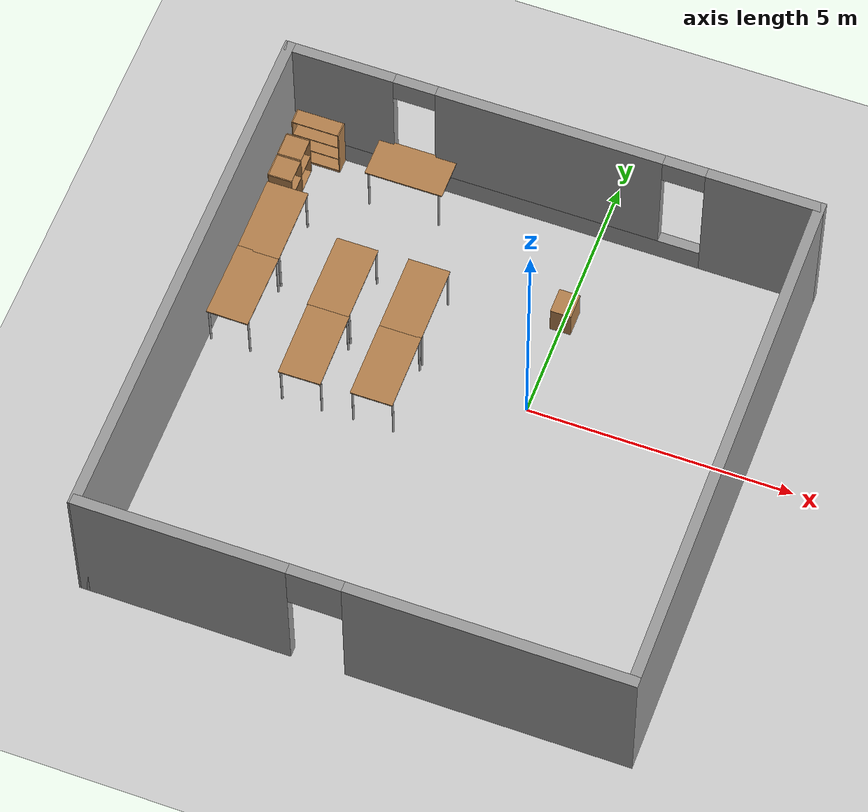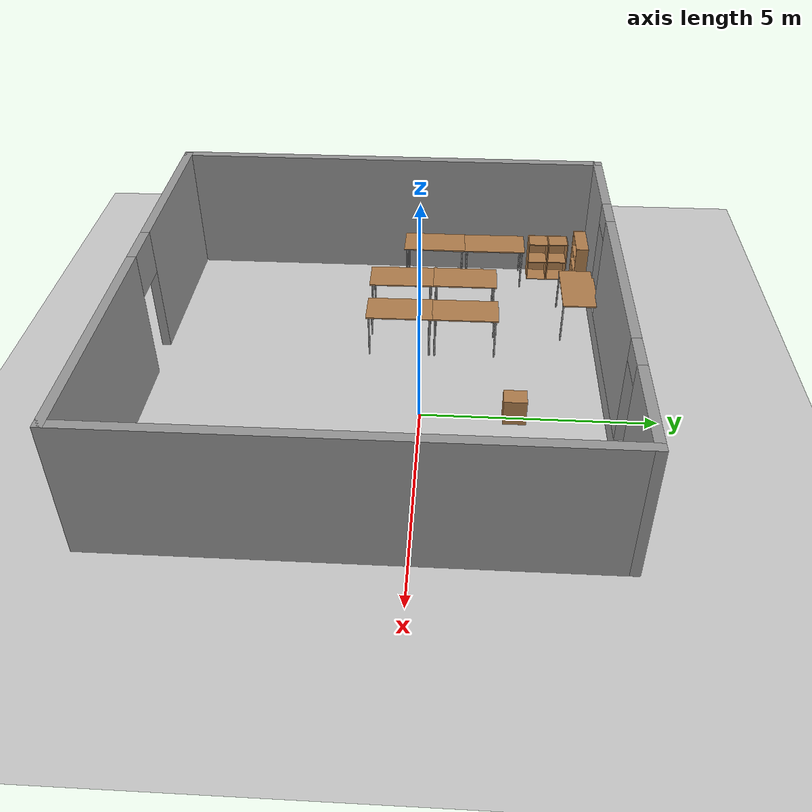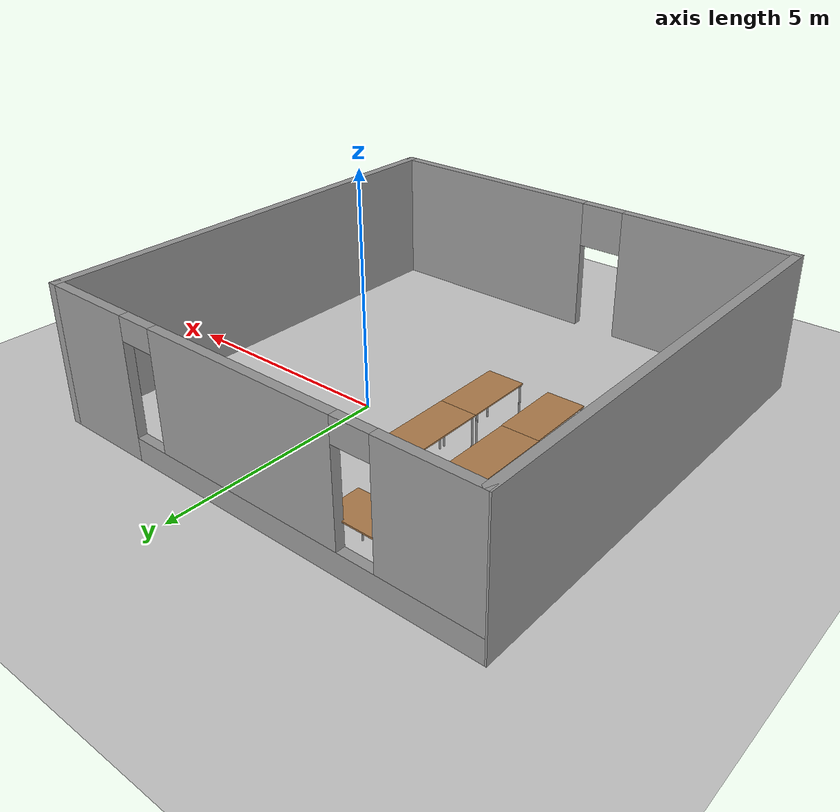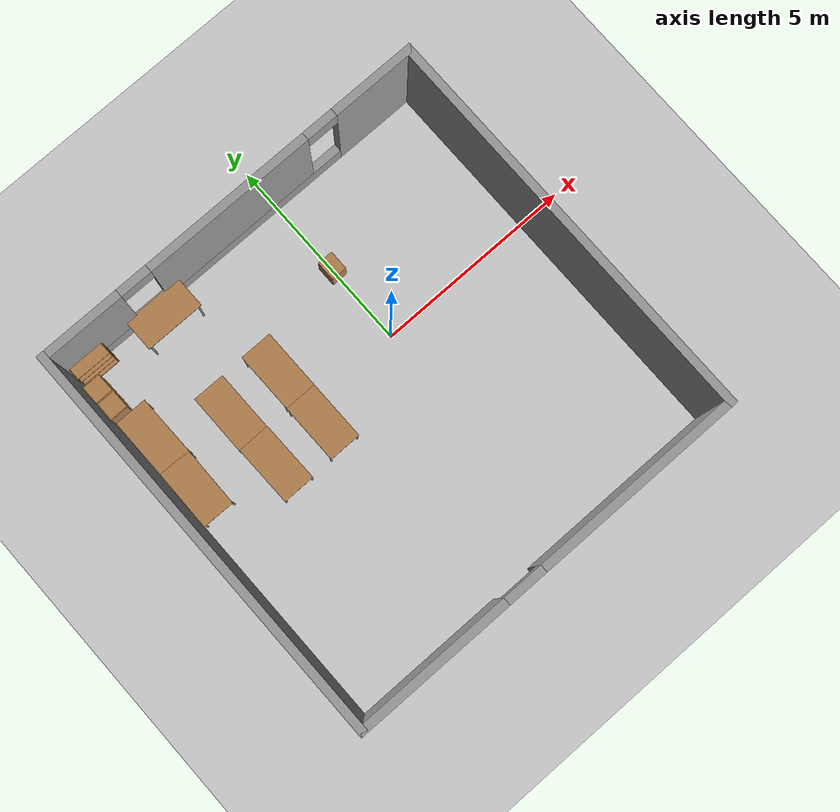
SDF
<sdf version="1.4">
 <world name="default">
  <model name="ground_plane">
   <static>1</static>
   <link name="link">
    <collision name="collision">
     <geometry><plane><normal>0 0 1</normal><size>100 100</size></plane></geometry>
     <surface><friction><ode><mu>100</mu><mu2>50</mu2></ode></friction></surface>
    </collision>
    <visual name="visual">
     <cast_shadows>0</cast_shadows>
     <geometry><plane><normal>0 0 1</normal><size>100 100</size></plane></geometry>
     <material>
      <script><uri>file://media/materials/scripts/gazebo.material</uri><name>Gazebo/Grey</name></script>
     </material>
    </visual>
    <velocity_decay><linear>0</linear><angular>0</angular></velocity_decay>
   </link>
  </model>
  <model name="cabinet">
   <static>1</static>
   <link name="cabinet_bottom_plate">
    <inertial>
     <pose>0 0 -1 0 -0 0</pose>
     <inertia><ixx>2.05</ixx><ixy>0</ixy><ixz>0</ixz><iyy>2.05</iyy><iyz>0</iyz><izz>2.05</izz></inertia>
     <mass>25</mass>
    </inertial>
    <collision name="cabinet_bottom_plate_geom">
     <pose>0 0 0.01 0 -0 0</pose>
     <geometry><box><size>0.45 0.45 0.02</size></box></geometry>
    </collision>
    <visual name="cabinet_bottom_plate_geom_visual">
     <pose>0 0 0.01 0 -0 0</pose>
     <geometry><box><size>0.45 0.45 0.02</size></box></geometry>
     <material>
      <script><uri>file://media/materials/scripts/gazebo.material</uri><name>Gazebo/Wood</name></script>
     </material>
    </visual>
    <collision name="cabinet_bottom_plate_geom_cabinet_back_plate">
     <pose>0.235 0 0.51 0 -0 0</pose>
     <geometry><box><size>0.02 0.45 1.02</size></box></geometry>
    </collision>
    <visual name="cabinet_bottom_plate_geom_cabinet_back_plate_visual">
     <pose>0.235 0 0.51 0 -0 0</pose>
     <geometry><box><size>0.02 0.45 1.02</size></box></geometry>
     <material>
      <script><uri>file://media/materials/scripts/gazebo.material</uri><name>Gazebo/Wood</name></script>
     </material>
    </visual>
    <collision name="cabinet_bottom_plate_geom_cabinet_left_plate">
     <pose>0 0.235 0.51 0 -0 0</pose>
     <geometry><box><size>0.45 0.02 1.02</size></box></geometry>
    </collision>
    <visual name="cabinet_bottom_plate_geom_cabinet_left_plate_visual">
     <pose>0 0.235 0.51 0 -0 0</pose>
     <geometry><box><size>0.45 0.02 1.02</size></box></geometry>
     <material>
      <script><uri>file://media/materials/scripts/gazebo.material</uri><name>Gazebo/Wood</name></script>
     </material>
    </visual>
    <collision name="cabinet_bottom_plate_geom_cabinet_middle_plate">
     <pose>0 0 0.51 0 -0 0</pose>
     <geometry><box><size>0.45 0.45 0.02</size></box></geometry>
    </collision>
    <visual name="cabinet_bottom_plate_geom_cabinet_middle_plate_visual">
     <pose>0 0 0.51 0 -0 0</pose>
     <geometry><box><size>0.45 0.45 0.02</size></box></geometry>
     <material>
      <script><uri>file://media/materials/scripts/gazebo.material</uri><name>Gazebo/Wood</name></script>
     </material>
    </visual>
    <collision name="cabinet_bottom_plate_geom_cabinet_right_plate">
     <pose>0 -0.235 0.51 0 -0 0</pose>
     <geometry><box><size>0.45 0.02 1.02</size></box></geometry>
    </collision>
    <visual name="cabinet_bottom_plate_geom_cabinet_right_plate_visual">
     <pose>0 -0.235 0.51 0 -0 0</pose>
     <geometry><box><size>0.45 0.02 1.02</size></box></geometry>
     <material>
      <script><uri>file://media/materials/scripts/gazebo.material</uri><name>Gazebo/Wood</name></script>
     </material>
    </visual>
    <collision name="cabinet_bottom_plate_geom_cabinet_top_plate">
     <pose>0 0 1.01 0 -0 0</pose>
     <geometry><box><size>0.45 0.45 0.02</size></box></geometry>
    </collision>
    <visual name="cabinet_bottom_plate_geom_cabinet_top_plate_visual">
     <pose>0 0 1.01 0 -0 0</pose>
     <geometry><box><size>0.45 0.45 0.02</size></box></geometry>
     <material>
      <script><uri>file://media/materials/scripts/gazebo.material</uri><name>Gazebo/Wood</name></script>
     </material>
    </visual>
    <velocity_decay><linear>0</linear><angular>0</angular></velocity_decay>
   </link>
   <pose>-5.69724 3.21191 0 0 0 -3.12456</pose>
  </model>
  <model name="cabinet_0">
   <static>1</static>
   <link name="cabinet_bottom_plate">
    <inertial>
     <pose>0 0 -1 0 -0 0</pose>
     <inertia><ixx>2.05</ixx><ixy>0</ixy><ixz>0</ixz><iyy>2.05</iyy><iyz>0</iyz><izz>2.05</izz></inertia>
     <mass>25</mass>
    </inertial>
    <collision name="cabinet_bottom_plate_geom">
     <pose>0 0 0.01 0 -0 0</pose>
     <geometry><box><size>0.45 0.45 0.02</size></box></geometry>
    </collision>
    <visual name="cabinet_bottom_plate_geom_visual">
     <pose>0 0 0.01 0 -0 0</pose>
     <geometry><box><size>0.45 0.45 0.02</size></box></geometry>
     <material>
      <script><uri>file://media/materials/scripts/gazebo.material</uri><name>Gazebo/Wood</name></script>
     </material>
    </visual>
    <collision name="cabinet_bottom_plate_geom_cabinet_back_plate">
     <pose>0.235 0 0.51 0 -0 0</pose>
     <geometry><box><size>0.02 0.45 1.02</size></box></geometry>
    </collision>
    <visual name="cabinet_bottom_plate_geom_cabinet_back_plate_visual">
     <pose>0.235 0 0.51 0 -0 0</pose>
     <geometry><box><size>0.02 0.45 1.02</size></box></geometry>
     <material>
      <script><uri>file://media/materials/scripts/gazebo.material</uri><name>Gazebo/Wood</name></script>
     </material>
    </visual>
    <collision name="cabinet_bottom_plate_geom_cabinet_left_plate">
     <pose>0 0.235 0.51 0 -0 0</pose>
     <geometry><box><size>0.45 0.02 1.02</size></box></geometry>
    </collision>
    <visual name="cabinet_bottom_plate_geom_cabinet_left_plate_visual">
     <pose>0 0.235 0.51 0 -0 0</pose>
     <geometry><box><size>0.45 0.02 1.02</size></box></geometry>
     <material>
      <script><uri>file://media/materials/scripts/gazebo.material</uri><name>Gazebo/Wood</name></script>
     </material>
    </visual>
    <collision name="cabinet_bottom_plate_geom_cabinet_middle_plate">
     <pose>0 0 0.51 0 -0 0</pose>
     <geometry><box><size>0.45 0.45 0.02</size></box></geometry>
    </collision>
    <visual name="cabinet_bottom_plate_geom_cabinet_middle_plate_visual">
     <pose>0 0 0.51 0 -0 0</pose>
     <geometry><box><size>0.45 0.45 0.02</size></box></geometry>
     <material>
      <script><uri>file://media/materials/scripts/gazebo.material</uri><name>Gazebo/Wood</name></script>
     </material>
    </visual>
    <collision name="cabinet_bottom_plate_geom_cabinet_right_plate">
     <pose>0 -0.235 0.51 0 -0 0</pose>
     <geometry><box><size>0.45 0.02 1.02</size></box></geometry>
    </collision>
    <visual name="cabinet_bottom_plate_geom_cabinet_right_plate_visual">
     <pose>0 -0.235 0.51 0 -0 0</pose>
     <geometry><box><size>0.45 0.02 1.02</size></box></geometry>
     <material>
      <script><uri>file://media/materials/scripts/gazebo.material</uri><name>Gazebo/Wood</name></script>
     </material>
    </visual>
    <collision name="cabinet_bottom_plate_geom_cabinet_top_plate">
     <pose>0 0 1.01 0 -0 0</pose>
     <geometry><box><size>0.45 0.45 0.02</size></box></geometry>
    </collision>
    <visual name="cabinet_bottom_plate_geom_cabinet_top_plate_visual">
     <pose>0 0 1.01 0 -0 0</pose>
     <geometry><box><size>0.45 0.45 0.02</size></box></geometry>
     <material>
      <script><uri>file://media/materials/scripts/gazebo.material</uri><name>Gazebo/Wood</name></script>
     </material>
    </visual>
    <velocity_decay><linear>0</linear><angular>0</angular></velocity_decay>
   </link>
   <pose>-5.68738 2.72419 0 0 0 -3.13777</pose>
  </model>
  <model name="bookshelf_1">
   <static>1</static>
   <link name="link">
    <inertial><mass>1</mass></inertial>
    <collision name="back">
     <pose>0 0.005 0.6 0 -0 0</pose>
     <geometry><box><size>0.9 0.01 1.2</size></box></geometry>
    </collision>
    <visual name="visual1">
     <pose>0 0.005 0.6 0 -0 0</pose>
     <geometry><box><size>0.9 0.01 1.2</size></box></geometry>
     <material>
      <script><uri>file://media/materials/scripts/gazebo.material</uri><name>Gazebo/Wood</name></script>
     </material>
    </visual>
    <collision name="left_side">
     <pose>0.45 -0.195 0.6 0 -0 0</pose>
     <geometry><box><size>0.02 0.4 1.2</size></box></geometry>
    </collision>
    <visual name="visual2">
     <pose>0.45 -0.195 0.6 0 -0 0</pose>
     <geometry><box><size>0.02 0.4 1.2</size></box></geometry>
     <material>
      <script><uri>file://media/materials/scripts/gazebo.material</uri><name>Gazebo/Wood</name></script>
     </material>
    </visual>
    <collision name="right_side">
     <pose>-0.45 -0.195 0.6 0 -0 0</pose>
     <geometry><box><size>0.02 0.4 1.2</size></box></geometry>
    </collision>
    <visual name="visual3">
     <pose>-0.45 -0.195 0.6 0 -0 0</pose>
     <geometry><box><size>0.02 0.4 1.2</size></box></geometry>
     <material>
      <script><uri>file://media/materials/scripts/gazebo.material</uri><name>Gazebo/Wood</name></script>
     </material>
    </visual>
    <collision name="bottom">
     <pose>0 -0.195 0.03 0 -0 0</pose>
     <geometry><box><size>0.88 0.4 0.06</size></box></geometry>
    </collision>
    <visual name="visual4">
     <pose>0 -0.195 0.03 0 -0 0</pose>
     <geometry><box><size>0.88 0.4 0.06</size></box></geometry>
     <material>
      <script><uri>file://media/materials/scripts/gazebo.material</uri><name>Gazebo/Wood</name></script>
     </material>
    </visual>
    <collision name="top">
     <pose>0 -0.195 1.19 0 -0 0</pose>
     <geometry><box><size>0.88 0.4 0.02</size></box></geometry>
    </collision>
    <visual name="visual5">
     <pose>0 -0.195 1.19 0 -0 0</pose>
     <geometry><box><size>0.88 0.4 0.02</size></box></geometry>
     <material>
      <script><uri>file://media/materials/scripts/gazebo.material</uri><name>Gazebo/Wood</name></script>
     </material>
    </visual>
    <collision name="low_shelf">
     <pose>0 -0.195 0.43 0 -0 0</pose>
     <geometry><box><size>0.88 0.4 0.02</size></box></geometry>
    </collision>
    <visual name="visual6">
     <pose>0 -0.195 0.43 0 -0 0</pose>
     <geometry><box><size>0.88 0.4 0.02</size></box></geometry>
     <material>
      <script><uri>file://media/materials/scripts/gazebo.material</uri><name>Gazebo/Wood</name></script>
     </material>
    </visual>
    <collision name="high_shelf">
     <pose>0 -0.195 0.8 0 -0 0</pose>
     <geometry><box><size>0.88 0.4 0.02</size></box></geometry>
    </collision>
    <visual name="visual7">
     <pose>0 -0.195 0.8 0 -0 0</pose>
     <geometry><box><size>0.88 0.4 0.02</size></box></geometry>
     <material>
      <script><uri>file://media/materials/scripts/gazebo.material</uri><name>Gazebo/Wood</name></script>
     </material>
    </visual>
    <velocity_decay><linear>0</linear><angular>0</angular></velocity_decay>
   </link>
   <pose>-5.43168 4 0 0 -0 0</pose>
  </model>
  <model name="table_8">
   <static>1</static>
   <link name="link">
    <collision name="surface">
     <pose>0 0 1 0 -0 0</pose>
     <geometry><box><size>1.5 0.8 0.03</size></box></geometry>
     <surface><friction><ode><mu>0.6</mu><mu2>0.6</mu2></ode></friction></surface>
    </collision>
    <visual name="visual1">
     <pose>0 0 1 0 -0 0</pose>
     <geometry><box><size>1.5 0.8 0.03</size></box></geometry>
     <material>
      <script><uri>file://media/materials/scripts/gazebo.material</uri><name>Gazebo/Wood</name></script>
     </material>
    </visual>
    <collision name="front_left_leg">
     <pose>0.68 0.38 0.5 0 -0 0</pose>
     <geometry><cylinder><radius>0.02</radius><length>1</length></cylinder></geometry>
    </collision>
    <visual name="front_left_leg">
     <pose>0.68 0.38 0.5 0 -0 0</pose>
     <geometry><cylinder><radius>0.02</radius><length>1</length></cylinder></geometry>
     <material>
      <script><uri>file://media/materials/scripts/gazebo.material</uri><name>Gazebo/Grey</name></script>
     </material>
    </visual>
    <collision name="front_right_leg">
     <pose>0.68 -0.38 0.5 0 -0 0</pose>
     <geometry><cylinder><radius>0.02</radius><length>1</length></cylinder></geometry>
    </collision>
    <visual name="front_right_leg">
     <pose>0.68 -0.38 0.5 0 -0 0</pose>
     <geometry><cylinder><radius>0.02</radius><length>1</length></cylinder></geometry>
     <material>
      <script><uri>file://media/materials/scripts/gazebo.material</uri><name>Gazebo/Grey</name></script>
     </material>
    </visual>
    <collision name="back_right_leg">
     <pose>-0.68 -0.38 0.5 0 -0 0</pose>
     <geometry><cylinder><radius>0.02</radius><length>1</length></cylinder></geometry>
    </collision>
    <visual name="back_right_leg">
     <pose>-0.68 -0.38 0.5 0 -0 0</pose>
     <geometry><cylinder><radius>0.02</radius><length>1</length></cylinder></geometry>
     <material>
      <script><uri>file://media/materials/scripts/gazebo.material</uri><name>Gazebo/Grey</name></script>
     </material>
    </visual>
    <collision name="back_left_leg">
     <pose>-0.68 0.38 0.5 0 -0 0</pose>
     <geometry><cylinder><radius>0.02</radius><length>1</length></cylinder></geometry>
    </collision>
    <visual name="back_left_leg">
     <pose>-0.68 0.38 0.5 0 -0 0</pose>
     <geometry><cylinder><radius>0.02</radius><length>1</length></cylinder></geometry>
     <material>
      <script><uri>file://media/materials/scripts/gazebo.material</uri><name>Gazebo/Grey</name></script>
     </material>
    </visual>
    <velocity_decay><linear>0</linear><angular>0</angular></velocity_decay>
   </link>
   <pose>-3.53797 3.54064 0 0 -0 0</pose>
  </model>
  <model name="table_9">
   <static>1</static>
   <link name="link">
    <collision name="surface">
     <pose>0 0 1 0 -0 0</pose>
     <geometry><box><size>1.5 0.8 0.03</size></box></geometry>
     <surface><friction><ode><mu>0.6</mu><mu2>0.6</mu2></ode></friction></surface>
    </collision>
    <visual name="visual1">
     <pose>0 0 1 0 -0 0</pose>
     <geometry><box><size>1.5 0.8 0.03</size></box></geometry>
     <material>
      <script><uri>file://media/materials/scripts/gazebo.material</uri><name>Gazebo/Wood</name></script>
     </material>
    </visual>
    <collision name="front_left_leg">
     <pose>0.68 0.38 0.5 0 -0 0</pose>
     <geometry><cylinder><radius>0.02</radius><length>1</length></cylinder></geometry>
    </collision>
    <visual name="front_left_leg">
     <pose>0.68 0.38 0.5 0 -0 0</pose>
     <geometry><cylinder><radius>0.02</radius><length>1</length></cylinder></geometry>
     <material>
      <script><uri>file://media/materials/scripts/gazebo.material</uri><name>Gazebo/Grey</name></script>
     </material>
    </visual>
    <collision name="front_right_leg">
     <pose>0.68 -0.38 0.5 0 -0 0</pose>
     <geometry><cylinder><radius>0.02</radius><length>1</length></cylinder></geometry>
    </collision>
    <visual name="front_right_leg">
     <pose>0.68 -0.38 0.5 0 -0 0</pose>
     <geometry><cylinder><radius>0.02</radius><length>1</length></cylinder></geometry>
     <material>
      <script><uri>file://media/materials/scripts/gazebo.material</uri><name>Gazebo/Grey</name></script>
     </material>
    </visual>
    <collision name="back_right_leg">
     <pose>-0.68 -0.38 0.5 0 -0 0</pose>
     <geometry><cylinder><radius>0.02</radius><length>1</length></cylinder></geometry>
    </collision>
    <visual name="back_right_leg">
     <pose>-0.68 -0.38 0.5 0 -0 0</pose>
     <geometry><cylinder><radius>0.02</radius><length>1</length></cylinder></geometry>
     <material>
      <script><uri>file://media/materials/scripts/gazebo.material</uri><name>Gazebo/Grey</name></script>
     </material>
    </visual>
    <collision name="back_left_leg">
     <pose>-0.68 0.38 0.5 0 -0 0</pose>
     <geometry><cylinder><radius>0.02</radius><length>1</length></cylinder></geometry>
    </collision>
    <visual name="back_left_leg">
     <pose>-0.68 0.38 0.5 0 -0 0</pose>
     <geometry><cylinder><radius>0.02</radius><length>1</length></cylinder></geometry>
     <material>
      <script><uri>file://media/materials/scripts/gazebo.material</uri><name>Gazebo/Grey</name></script>
     </material>
    </visual>
    <velocity_decay><linear>0</linear><angular>0</angular></velocity_decay>
   </link>
   <pose>-2.48045 0.921497 0 0 0 -1.56751</pose>
  </model>
  <model name="table_10">
   <static>1</static>
   <link name="link">
    <collision name="surface">
     <pose>0 0 1 0 -0 0</pose>
     <geometry><box><size>1.5 0.8 0.03</size></box></geometry>
     <surface><friction><ode><mu>0.6</mu><mu2>0.6</mu2></ode></friction></surface>
    </collision>
    <visual name="visual1">
     <pose>0 0 1 0 -0 0</pose>
     <geometry><box><size>1.5 0.8 0.03</size></box></geometry>
     <material>
      <script><uri>file://media/materials/scripts/gazebo.material</uri><name>Gazebo/Wood</name></script>
     </material>
    </visual>
    <collision name="front_left_leg">
     <pose>0.68 0.38 0.5 0 -0 0</pose>
     <geometry><cylinder><radius>0.02</radius><length>1</length></cylinder></geometry>
    </collision>
    <visual name="front_left_leg">
     <pose>0.68 0.38 0.5 0 -0 0</pose>
     <geometry><cylinder><radius>0.02</radius><length>1</length></cylinder></geometry>
     <material>
      <script><uri>file://media/materials/scripts/gazebo.material</uri><name>Gazebo/Grey</name></script>
     </material>
    </visual>
    <collision name="front_right_leg">
     <pose>0.68 -0.38 0.5 0 -0 0</pose>
     <geometry><cylinder><radius>0.02</radius><length>1</length></cylinder></geometry>
    </collision>
    <visual name="front_right_leg">
     <pose>0.68 -0.38 0.5 0 -0 0</pose>
     <geometry><cylinder><radius>0.02</radius><length>1</length></cylinder></geometry>
     <material>
      <script><uri>file://media/materials/scripts/gazebo.material</uri><name>Gazebo/Grey</name></script>
     </material>
    </visual>
    <collision name="back_right_leg">
     <pose>-0.68 -0.38 0.5 0 -0 0</pose>
     <geometry><cylinder><radius>0.02</radius><length>1</length></cylinder></geometry>
    </collision>
    <visual name="back_right_leg">
     <pose>-0.68 -0.38 0.5 0 -0 0</pose>
     <geometry><cylinder><radius>0.02</radius><length>1</length></cylinder></geometry>
     <material>
      <script><uri>file://media/materials/scripts/gazebo.material</uri><name>Gazebo/Grey</name></script>
     </material>
    </visual>
    <collision name="back_left_leg">
     <pose>-0.68 0.38 0.5 0 -0 0</pose>
     <geometry><cylinder><radius>0.02</radius><length>1</length></cylinder></geometry>
    </collision>
    <visual name="back_left_leg">
     <pose>-0.68 0.38 0.5 0 -0 0</pose>
     <geometry><cylinder><radius>0.02</radius><length>1</length></cylinder></geometry>
     <material>
      <script><uri>file://media/materials/scripts/gazebo.material</uri><name>Gazebo/Grey</name></script>
     </material>
    </visual>
    <velocity_decay><linear>0</linear><angular>0</angular></velocity_decay>
   </link>
   <pose>-2.47594 -0.565495 0 0 0 -1.56582</pose>
  </model>
  <model name="table_11">
   <static>1</static>
   <link name="link">
    <collision name="surface">
     <pose>0 0 1 0 -0 0</pose>
     <geometry><box><size>1.5 0.8 0.03</size></box></geometry>
     <surface><friction><ode><mu>0.6</mu><mu2>0.6</mu2></ode></friction></surface>
    </collision>
    <visual name="visual1">
     <pose>0 0 1 0 -0 0</pose>
     <geometry><box><size>1.5 0.8 0.03</size></box></geometry>
     <material>
      <script><uri>file://media/materials/scripts/gazebo.material</uri><name>Gazebo/Wood</name></script>
     </material>
    </visual>
    <collision name="front_left_leg">
     <pose>0.68 0.38 0.5 0 -0 0</pose>
     <geometry><cylinder><radius>0.02</radius><length>1</length></cylinder></geometry>
    </collision>
    <visual name="front_left_leg">
     <pose>0.68 0.38 0.5 0 -0 0</pose>
     <geometry><cylinder><radius>0.02</radius><length>1</length></cylinder></geometry>
     <material>
      <script><uri>file://media/materials/scripts/gazebo.material</uri><name>Gazebo/Grey</name></script>
     </material>
    </visual>
    <collision name="front_right_leg">
     <pose>0.68 -0.38 0.5 0 -0 0</pose>
     <geometry><cylinder><radius>0.02</radius><length>1</length></cylinder></geometry>
    </collision>
    <visual name="front_right_leg">
     <pose>0.68 -0.38 0.5 0 -0 0</pose>
     <geometry><cylinder><radius>0.02</radius><length>1</length></cylinder></geometry>
     <material>
      <script><uri>file://media/materials/scripts/gazebo.material</uri><name>Gazebo/Grey</name></script>
     </material>
    </visual>
    <collision name="back_right_leg">
     <pose>-0.68 -0.38 0.5 0 -0 0</pose>
     <geometry><cylinder><radius>0.02</radius><length>1</length></cylinder></geometry>
    </collision>
    <visual name="back_right_leg">
     <pose>-0.68 -0.38 0.5 0 -0 0</pose>
     <geometry><cylinder><radius>0.02</radius><length>1</length></cylinder></geometry>
     <material>
      <script><uri>file://media/materials/scripts/gazebo.material</uri><name>Gazebo/Grey</name></script>
     </material>
    </visual>
    <collision name="back_left_leg">
     <pose>-0.68 0.38 0.5 0 -0 0</pose>
     <geometry><cylinder><radius>0.02</radius><length>1</length></cylinder></geometry>
    </collision>
    <visual name="back_left_leg">
     <pose>-0.68 0.38 0.5 0 -0 0</pose>
     <geometry><cylinder><radius>0.02</radius><length>1</length></cylinder></geometry>
     <material>
      <script><uri>file://media/materials/scripts/gazebo.material</uri><name>Gazebo/Grey</name></script>
     </material>
    </visual>
    <velocity_decay><linear>0</linear><angular>0</angular></velocity_decay>
   </link>
   <pose>-3.85338 0.897196 0 0 0 -1.56937</pose>
  </model>
  <model name="table_12">
   <static>1</static>
   <link name="link">
    <collision name="surface">
     <pose>0 0 1 0 -0 0</pose>
     <geometry><box><size>1.5 0.8 0.03</size></box></geometry>
     <surface><friction><ode><mu>0.6</mu><mu2>0.6</mu2></ode></friction></surface>
    </collision>
    <visual name="visual1">
     <pose>0 0 1 0 -0 0</pose>
     <geometry><box><size>1.5 0.8 0.03</size></box></geometry>
     <material>
      <script><uri>file://media/materials/scripts/gazebo.material</uri><name>Gazebo/Wood</name></script>
     </material>
    </visual>
    <collision name="front_left_leg">
     <pose>0.68 0.38 0.5 0 -0 0</pose>
     <geometry><cylinder><radius>0.02</radius><length>1</length></cylinder></geometry>
    </collision>
    <visual name="front_left_leg">
     <pose>0.68 0.38 0.5 0 -0 0</pose>
     <geometry><cylinder><radius>0.02</radius><length>1</length></cylinder></geometry>
     <material>
      <script><uri>file://media/materials/scripts/gazebo.material</uri><name>Gazebo/Grey</name></script>
     </material>
    </visual>
    <collision name="front_right_leg">
     <pose>0.68 -0.38 0.5 0 -0 0</pose>
     <geometry><cylinder><radius>0.02</radius><length>1</length></cylinder></geometry>
    </collision>
    <visual name="front_right_leg">
     <pose>0.68 -0.38 0.5 0 -0 0</pose>
     <geometry><cylinder><radius>0.02</radius><length>1</length></cylinder></geometry>
     <material>
      <script><uri>file://media/materials/scripts/gazebo.material</uri><name>Gazebo/Grey</name></script>
     </material>
    </visual>
    <collision name="back_right_leg">
     <pose>-0.68 -0.38 0.5 0 -0 0</pose>
     <geometry><cylinder><radius>0.02</radius><length>1</length></cylinder></geometry>
    </collision>
    <visual name="back_right_leg">
     <pose>-0.68 -0.38 0.5 0 -0 0</pose>
     <geometry><cylinder><radius>0.02</radius><length>1</length></cylinder></geometry>
     <material>
      <script><uri>file://media/materials/scripts/gazebo.material</uri><name>Gazebo/Grey</name></script>
     </material>
    </visual>
    <collision name="back_left_leg">
     <pose>-0.68 0.38 0.5 0 -0 0</pose>
     <geometry><cylinder><radius>0.02</radius><length>1</length></cylinder></geometry>
    </collision>
    <visual name="back_left_leg">
     <pose>-0.68 0.38 0.5 0 -0 0</pose>
     <geometry><cylinder><radius>0.02</radius><length>1</length></cylinder></geometry>
     <material>
      <script><uri>file://media/materials/scripts/gazebo.material</uri><name>Gazebo/Grey</name></script>
     </material>
    </visual>
    <velocity_decay><linear>0</linear><angular>0</angular></velocity_decay>
   </link>
   <pose>-3.8326 -0.598744 0 0 0 -1.55864</pose>
  </model>
  <model name="table_13">
   <static>1</static>
   <link name="link">
    <collision name="surface">
     <pose>0 0 1 0 -0 0</pose>
     <geometry><box><size>1.5 0.8 0.03</size></box></geometry>
     <surface><friction><ode><mu>0.6</mu><mu2>0.6</mu2></ode></friction></surface>
    </collision>
    <visual name="visual1">
     <pose>0 0 1 0 -0 0</pose>
     <geometry><box><size>1.5 0.8 0.03</size></box></geometry>
     <material>
      <script><uri>file://media/materials/scripts/gazebo.material</uri><name>Gazebo/Wood</name></script>
     </material>
    </visual>
    <collision name="front_left_leg">
     <pose>0.68 0.38 0.5 0 -0 0</pose>
     <geometry><cylinder><radius>0.02</radius><length>1</length></cylinder></geometry>
    </collision>
    <visual name="front_left_leg">
     <pose>0.68 0.38 0.5 0 -0 0</pose>
     <geometry><cylinder><radius>0.02</radius><length>1</length></cylinder></geometry>
     <material>
      <script><uri>file://media/materials/scripts/gazebo.material</uri><name>Gazebo/Grey</name></script>
     </material>
    </visual>
    <collision name="front_right_leg">
     <pose>0.68 -0.38 0.5 0 -0 0</pose>
     <geometry><cylinder><radius>0.02</radius><length>1</length></cylinder></geometry>
    </collision>
    <visual name="front_right_leg">
     <pose>0.68 -0.38 0.5 0 -0 0</pose>
     <geometry><cylinder><radius>0.02</radius><length>1</length></cylinder></geometry>
     <material>
      <script><uri>file://media/materials/scripts/gazebo.material</uri><name>Gazebo/Grey</name></script>
     </material>
    </visual>
    <collision name="back_right_leg">
     <pose>-0.68 -0.38 0.5 0 -0 0</pose>
     <geometry><cylinder><radius>0.02</radius><length>1</length></cylinder></geometry>
    </collision>
    <visual name="back_right_leg">
     <pose>-0.68 -0.38 0.5 0 -0 0</pose>
     <geometry><cylinder><radius>0.02</radius><length>1</length></cylinder></geometry>
     <material>
      <script><uri>file://media/materials/scripts/gazebo.material</uri><name>Gazebo/Grey</name></script>
     </material>
    </visual>
    <collision name="back_left_leg">
     <pose>-0.68 0.38 0.5 0 -0 0</pose>
     <geometry><cylinder><radius>0.02</radius><length>1</length></cylinder></geometry>
    </collision>
    <visual name="back_left_leg">
     <pose>-0.68 0.38 0.5 0 -0 0</pose>
     <geometry><cylinder><radius>0.02</radius><length>1</length></cylinder></geometry>
     <material>
      <script><uri>file://media/materials/scripts/gazebo.material</uri><name>Gazebo/Grey</name></script>
     </material>
    </visual>
    <velocity_decay><linear>0</linear><angular>0</angular></velocity_decay>
   </link>
   <pose>-5.47786 1.60599 0 0 0 -1.5645</pose>
  </model>
  <model name="table_14">
   <static>1</static>
   <link name="link">
    <collision name="surface">
     <pose>0 0 1 0 -0 0</pose>
     <geometry><box><size>1.5 0.8 0.03</size></box></geometry>
     <surface><friction><ode><mu>0.6</mu><mu2>0.6</mu2></ode></friction></surface>
    </collision>
    <visual name="visual1">
     <pose>0 0 1 0 -0 0</pose>
     <geometry><box><size>1.5 0.8 0.03</size></box></geometry>
     <material>
      <script><uri>file://media/materials/scripts/gazebo.material</uri><name>Gazebo/Wood</name></script>
     </material>
    </visual>
    <collision name="front_left_leg">
     <pose>0.68 0.38 0.5 0 -0 0</pose>
     <geometry><cylinder><radius>0.02</radius><length>1</length></cylinder></geometry>
    </collision>
    <visual name="front_left_leg">
     <pose>0.68 0.38 0.5 0 -0 0</pose>
     <geometry><cylinder><radius>0.02</radius><length>1</length></cylinder></geometry>
     <material>
      <script><uri>file://media/materials/scripts/gazebo.material</uri><name>Gazebo/Grey</name></script>
     </material>
    </visual>
    <collision name="front_right_leg">
     <pose>0.68 -0.38 0.5 0 -0 0</pose>
     <geometry><cylinder><radius>0.02</radius><length>1</length></cylinder></geometry>
    </collision>
    <visual name="front_right_leg">
     <pose>0.68 -0.38 0.5 0 -0 0</pose>
     <geometry><cylinder><radius>0.02</radius><length>1</length></cylinder></geometry>
     <material>
      <script><uri>file://media/materials/scripts/gazebo.material</uri><name>Gazebo/Grey</name></script>
     </material>
    </visual>
    <collision name="back_right_leg">
     <pose>-0.68 -0.38 0.5 0 -0 0</pose>
     <geometry><cylinder><radius>0.02</radius><length>1</length></cylinder></geometry>
    </collision>
    <visual name="back_right_leg">
     <pose>-0.68 -0.38 0.5 0 -0 0</pose>
     <geometry><cylinder><radius>0.02</radius><length>1</length></cylinder></geometry>
     <material>
      <script><uri>file://media/materials/scripts/gazebo.material</uri><name>Gazebo/Grey</name></script>
     </material>
    </visual>
    <collision name="back_left_leg">
     <pose>-0.68 0.38 0.5 0 -0 0</pose>
     <geometry><cylinder><radius>0.02</radius><length>1</length></cylinder></geometry>
    </collision>
    <visual name="back_left_leg">
     <pose>-0.68 0.38 0.5 0 -0 0</pose>
     <geometry><cylinder><radius>0.02</radius><length>1</length></cylinder></geometry>
     <material>
      <script><uri>file://media/materials/scripts/gazebo.material</uri><name>Gazebo/Grey</name></script>
     </material>
    </visual>
    <velocity_decay><linear>0</linear><angular>0</angular></velocity_decay>
   </link>
   <pose>-5.48273 0.129208 0 0 0 -1.58036</pose>
  </model>
  <model name="NASLab">
   <link name="Wall_10">
    <pose>-1 4 0 0 -0 3.14159</pose>
    <visual name="Wall_10_Visual_0">
     <pose>-4.00121 0 1.5 0 -0 0</pose>
     <geometry><box><size>2.19758 0.2 3</size></box></geometry>
     <material>
      <script><uri>file://media/materials/scripts/gazebo.material</uri><name>Gazebo/Grey</name></script>
     </material>
    </visual>
    <collision name="Wall_10_Collision_0">
     <geometry><box><size>2.19758 0.2 3</size></box></geometry>
     <pose>-4.00121 0 1.5 0 -0 0</pose>
    </collision>
    <visual name="Wall_10_Visual_1">
     <pose>1.09879 0 0.25 0 -0 0</pose>
     <geometry><box><size>8.00242 0.2 0.5</size></box></geometry>
     <material>
      <script><uri>file://media/materials/scripts/gazebo.material</uri><name>Gazebo/Grey</name></script>
     </material>
    </visual>
    <collision name="Wall_10_Collision_1">
     <geometry><box><size>8.00242 0.2 0.5</size></box></geometry>
     <pose>1.09879 0 0.25 0 -0 0</pose>
    </collision>
    <visual name="Wall_10_Visual_2">
     <pose>0.048036 0 1.75 0 -0 0</pose>
     <geometry><box><size>4.30092 0.2 2.5</size></box></geometry>
     <material>
      <script><uri>file://media/materials/scripts/gazebo.material</uri><name>Gazebo/Grey</name></script>
     </material>
    </visual>
    <collision name="Wall_10_Collision_2">
     <geometry><box><size>4.30092 0.2 2.5</size></box></geometry>
     <pose>0.048036 0 1.75 0 -0 0</pose>
    </collision>
    <visual name="Wall_10_Visual_3">
     <pose>4.04925 0 1.75 0 -0 0</pose>
     <geometry><box><size>2.1015 0.2 2.5</size></box></geometry>
     <material>
      <script><uri>file://media/materials/scripts/gazebo.material</uri><name>Gazebo/Grey</name></script>
     </material>
    </visual>
    <collision name="Wall_10_Collision_3">
     <geometry><box><size>2.1015 0.2 2.5</size></box></geometry>
     <pose>4.04925 0 1.75 0 -0 0</pose>
    </collision>
    <visual name="Wall_10_Visual_4">
     <pose>-2.50242 0 2.75 0 -0 0</pose>
     <geometry><box><size>0.8 0.2 0.5</size></box></geometry>
     <material>
      <script><uri>file://media/materials/scripts/gazebo.material</uri><name>Gazebo/Grey</name></script>
     </material>
    </visual>
    <collision name="Wall_10_Collision_4">
     <geometry><box><size>0.8 0.2 0.5</size></box></geometry>
     <pose>-2.50242 0 2.75 0 -0 0</pose>
    </collision>
    <visual name="Wall_10_Visual_5">
     <pose>2.5985 0 2.75 0 -0 0</pose>
     <geometry><box><size>0.8 0.2 0.5</size></box></geometry>
     <material>
      <script><uri>file://media/materials/scripts/gazebo.material</uri><name>Gazebo/Grey</name></script>
     </material>
    </visual>
    <collision name="Wall_10_Collision_5">
     <geometry><box><size>0.8 0.2 0.5</size></box></geometry>
     <pose>2.5985 0 2.75 0 -0 0</pose>
    </collision>
    <velocity_decay><linear>0</linear><angular>0</angular></velocity_decay>
   </link>
   <link name="Wall_12">
    <collision name="Wall_12_Collision">
     <geometry><box><size>10.2 0.2 3</size></box></geometry>
     <pose>0 0 1.5 0 -0 0</pose>
    </collision>
    <visual name="Wall_12_Visual">
     <pose>0 0 1.5 0 -0 0</pose>
     <geometry><box><size>10.2 0.2 3</size></box></geometry>
     <material>
      <script><uri>file://media/materials/scripts/gazebo.material</uri><name>Gazebo/Grey</name></script>
     </material>
    </visual>
    <velocity_decay><linear>0</linear><angular>0</angular></velocity_decay>
    <pose>-6.035 -1 0 0 0 -1.5708</pose>
   </link>
   <link name="Wall_6">
    <pose>-1 -6 0 0 -0 0</pose>
    <visual name="Wall_6_Visual_0">
     <pose>-3.13183 0 1.5 0 -0 0</pose>
     <geometry><box><size>3.93634 0.2 3</size></box></geometry>
     <material>
      <script><uri>file://media/materials/scripts/gazebo.material</uri><name>Gazebo/Grey</name></script>
     </material>
    </visual>
    <collision name="Wall_6_Collision_0">
     <geometry><box><size>3.93634 0.2 3</size></box></geometry>
     <pose>-3.13183 0 1.5 0 -0 0</pose>
    </collision>
    <visual name="Wall_6_Visual_1">
     <pose>2.46817 0 1.5 0 -0 0</pose>
     <geometry><box><size>5.26366 0.2 3</size></box></geometry>
     <material>
      <script><uri>file://media/materials/scripts/gazebo.material</uri><name>Gazebo/Grey</name></script>
     </material>
    </visual>
    <collision name="Wall_6_Collision_1">
     <geometry><box><size>5.26366 0.2 3</size></box></geometry>
     <pose>2.46817 0 1.5 0 -0 0</pose>
    </collision>
    <visual name="Wall_6_Visual_2">
     <pose>-0.663665 0 2.5 0 -0 0</pose>
     <geometry><box><size>1 0.2 1</size></box></geometry>
     <material>
      <script><uri>file://media/materials/scripts/gazebo.material</uri><name>Gazebo/Grey</name></script>
     </material>
    </visual>
    <collision name="Wall_6_Collision_2">
     <geometry><box><size>1 0.2 1</size></box></geometry>
     <pose>-0.663665 0 2.5 0 -0 0</pose>
    </collision>
    <velocity_decay><linear>0</linear><angular>0</angular></velocity_decay>
   </link>
   <link name="Wall_8">
    <collision name="Wall_8_Collision">
     <geometry><box><size>10.2 0.2 3</size></box></geometry>
     <pose>0 0 1.5 0 -0 0</pose>
    </collision>
    <visual name="Wall_8_Visual">
     <pose>0 0 1.5 0 -0 0</pose>
     <geometry><box><size>10.2 0.2 3</size></box></geometry>
     <material>
      <script><uri>file://media/materials/scripts/gazebo.material</uri><name>Gazebo/Grey</name></script>
     </material>
    </visual>
    <velocity_decay><linear>0</linear><angular>0</angular></velocity_decay>
    <pose>4 -1 0 0 -0 1.5708</pose>
   </link>
   <static>1</static>
  </model>
  <model name="unit_box_2">
   <pose>0 2 0.302274 1e-06 1e-06 4e-06</pose>
   <link name="link">
    <inertial>
     <mass>1</mass>
     <inertia><ixx>1</ixx><ixy>0</ixy><ixz>0</ixz><iyy>1</iyy><iyz>0</iyz><izz>1</izz></inertia>
    </inertial>
    <collision name="collision"><geometry><box><size>0.39706 0.49295 0.60455</size></box></geometry></collision>
    <visual name="visual">
     <geometry><box><size>0.39706 0.49295 0.60455</size></box></geometry>
     <material>
      <script><uri>file://media/materials/scripts/gazebo.material</uri><name>Gazebo/Wood</name></script>
     </material>
    </visual>
    <velocity_decay><linear>0</linear><angular>0</angular></velocity_decay>
   </link>
   <static>0</static>
  </model>
 </world>
</sdf>
